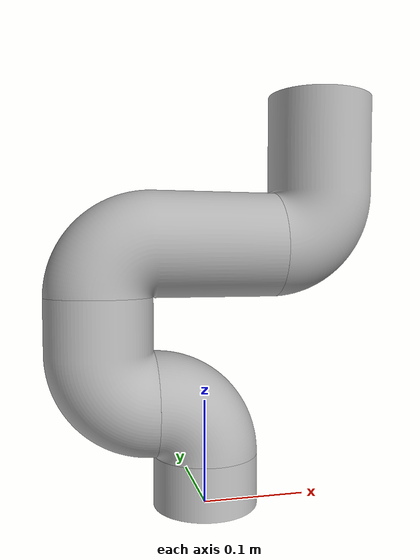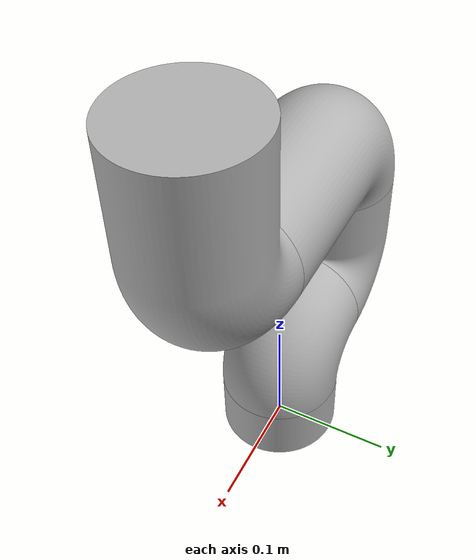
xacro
<?xml version="1.0" ?>
<robot name="dummy_arm2" xmlns:xacro="http://www.ros.org/wiki/xacro">

<xacro:include filename="$(find dummy_arm2_description)/urdf/materials.xacro" />
<xacro:include filename="$(find dummy_arm2_description)/urdf/dummy_arm2.trans" />
<xacro:include filename="$(find dummy_arm2_description)/urdf/dummy_arm2.gazebo" />
<link name="base_link">
  <inertial>
    <origin xyz="-1.1580046200244058e-17 5.790023100122029e-18 0.024999999999999994" rpy="0 0 0"/>
    <mass value="3.082687791334984"/>
    <inertia ixx="0.002569" iyy="0.002569" izz="0.003853" ixy="-0.0" iyz="-0.0" ixz="-0.0"/>
  </inertial>
  <visual>
    <origin xyz="0 0 0" rpy="0 0 0"/>
    <geometry>
      <mesh filename="package://dummy_arm2_description/meshes/base_link.stl" scale="0.001 0.001 0.001"/>
    </geometry>
    <material name="silver"/>
  </visual>
  <collision>
    <origin xyz="0 0 0" rpy="0 0 0"/>
    <geometry>
      <mesh filename="package://dummy_arm2_description/meshes/base_link.stl" scale="0.001 0.001 0.001"/>
    </geometry>
  </collision>
</link>

<link name="Componente22_1">
  <inertial>
    <origin xyz="-0.010211264227026446 7.372086376005458e-17 0.03978873577297355" rpy="0 0 0"/>
    <mass value="4.842274659284458"/>
    <inertia ixx="0.005953" iyy="0.005853" izz="0.005953" ixy="0.0" iyz="0.0" ixz="0.000923"/>
  </inertial>
  <visual>
    <origin xyz="-0.0 -0.0 -0.05" rpy="0 0 0"/>
    <geometry>
      <mesh filename="package://dummy_arm2_description/meshes/Componente22_1.stl" scale="0.001 0.001 0.001"/>
    </geometry>
    <material name="silver"/>
  </visual>
  <collision>
    <origin xyz="-0.0 -0.0 -0.05" rpy="0 0 0"/>
    <geometry>
      <mesh filename="package://dummy_arm2_description/meshes/Componente22_1.stl" scale="0.001 0.001 0.001"/>
    </geometry>
  </collision>
</link>

<link name="Componente23_1">
  <inertial>
    <origin xyz="-0.04382633344887045 1.7828469446955497e-17 0.03609905748256684" rpy="0 0 0"/>
    <mass value="8.009137778382515"/>
    <inertia ixx="0.016836" iyy="0.016935" izz="0.010111" ixy="0.0" iyz="-0.0" ixz="0.002203"/>
  </inertial>
  <visual>
    <origin xyz="0.05 -0.0 -0.1" rpy="0 0 0"/>
    <geometry>
      <mesh filename="package://dummy_arm2_description/meshes/Componente23_1.stl" scale="0.001 0.001 0.001"/>
    </geometry>
    <material name="silver"/>
  </visual>
  <collision>
    <origin xyz="0.05 -0.0 -0.1" rpy="0 0 0"/>
    <geometry>
      <mesh filename="package://dummy_arm2_description/meshes/Componente23_1.stl" scale="0.001 0.001 0.001"/>
    </geometry>
  </collision>
</link>

<link name="Componente24_1">
  <inertial>
    <origin xyz="0.06972499567000791 -2.6719989181409757e-15 0.04478782693038996" rpy="0 0 0"/>
    <mass value="11.9971998448048"/>
    <inertia ixx="0.015067" iyy="0.04653" izz="0.046459" ixy="0.0" iyz="-0.0" ixz="-0.003477"/>
  </inertial>
  <visual>
    <origin xyz="0.1 0.0 -0.201365" rpy="0 0 0"/>
    <geometry>
      <mesh filename="package://dummy_arm2_description/meshes/Componente24_1.stl" scale="0.001 0.001 0.001"/>
    </geometry>
    <material name="silver"/>
  </visual>
  <collision>
    <origin xyz="0.1 0.0 -0.201365" rpy="0 0 0"/>
    <geometry>
      <mesh filename="package://dummy_arm2_description/meshes/Componente24_1.stl" scale="0.001 0.001 0.001"/>
    </geometry>
  </collision>
</link>

<link name="Componente25_1">
  <inertial>
    <origin xyz="0.043447667239821366 6.86138785402539e-18 0.05770804597769624" rpy="0 0 0"/>
    <mass value="10.405377980096134"/>
    <inertia ixx="0.032262" iyy="0.032226" izz="0.012971" ixy="-0.0" iyz="-0.0" ixz="-0.002734"/>
  </inertial>
  <visual>
    <origin xyz="-0.067459 0.0 -0.250019" rpy="0 0 0"/>
    <geometry>
      <mesh filename="package://dummy_arm2_description/meshes/Componente25_1.stl" scale="0.001 0.001 0.001"/>
    </geometry>
    <material name="silver"/>
  </visual>
  <collision>
    <origin xyz="-0.067459 0.0 -0.250019" rpy="0 0 0"/>
    <geometry>
      <mesh filename="package://dummy_arm2_description/meshes/Componente25_1.stl" scale="0.001 0.001 0.001"/>
    </geometry>
  </collision>
</link>

<joint name="rev_join1" type="continuous">
  <origin xyz="0.0 0.0 0.05" rpy="0 0 0"/>
  <parent link="base_link"/>
  <child link="Componente22_1"/>
  <axis xyz="0.0 0.0 1.0"/>
</joint>

<joint name="rev_join2" type="continuous">
  <origin xyz="-0.05 0.0 0.05" rpy="0 0 0"/>
  <parent link="Componente22_1"/>
  <child link="Componente23_1"/>
  <axis xyz="-1.0 0.0 0.0"/>
</joint>

<joint name="rev_join3" type="continuous">
  <origin xyz="-0.05 -0.0 0.101365" rpy="0 0 0"/>
  <parent link="Componente23_1"/>
  <child link="Componente24_1"/>
  <axis xyz="0.0 0.0 1.0"/>
</joint>

<joint name="rev_join4" type="continuous">
  <origin xyz="0.167459 0.0 0.048654" rpy="0 0 0"/>
  <parent link="Componente24_1"/>
  <child link="Componente25_1"/>
  <axis xyz="0.999627 -0.0 0.027306"/>
</joint>

</robot>

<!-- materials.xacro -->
<robot name="dummy_arm2" xmlns:xacro="http://www.ros.org/wiki/xacro" >

<material name="silver">
  <color rgba="0.700 0.700 0.700 1.000"/>
</material>

</robot>

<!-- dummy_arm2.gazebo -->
<robot name="dummy_arm2" xmlns:xacro="http://www.ros.org/wiki/xacro" >

<xacro:property name="body_color" value="Gazebo/Silver" />

<gazebo>
  <plugin name="control" filename="libgazebo_ros_control.so"/>
</gazebo>
<gazebo reference="base_link">
  <material>${body_color}</material>
  <mu1>0.2</mu1>
  <mu2>0.2</mu2>
  <selfCollide>true</selfCollide>
  <gravity>true</gravity>
</gazebo>

<gazebo reference="Componente22_1">
  <material>${body_color}</material>
  <mu1>0.2</mu1>
  <mu2>0.2</mu2>
  <selfCollide>true</selfCollide>
</gazebo>

<gazebo reference="Componente23_1">
  <material>${body_color}</material>
  <mu1>0.2</mu1>
  <mu2>0.2</mu2>
  <selfCollide>true</selfCollide>
</gazebo>

<gazebo reference="Componente24_1">
  <material>${body_color}</material>
  <mu1>0.2</mu1>
  <mu2>0.2</mu2>
  <selfCollide>true</selfCollide>
</gazebo>

<gazebo reference="Componente25_1">
  <material>${body_color}</material>
  <mu1>0.2</mu1>
  <mu2>0.2</mu2>
  <selfCollide>true</selfCollide>
</gazebo>

</robot>
